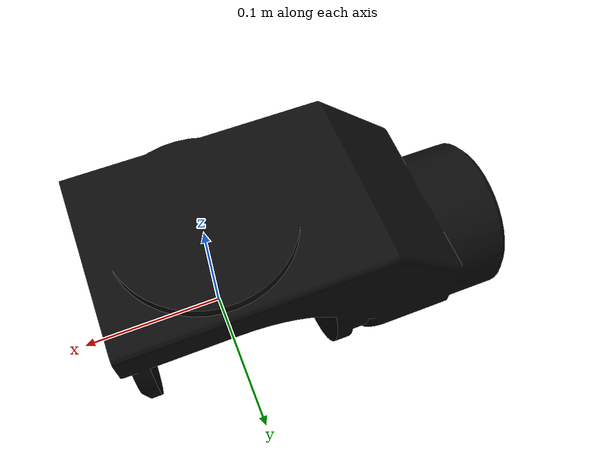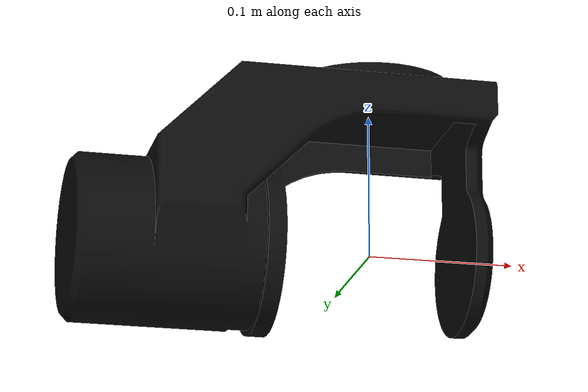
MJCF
<mujoco model="LINK_5">
  <default>
    <default class="visual">
      <geom group="2" type="mesh" contype="0" conaffinity="0"/>
    </default>
    <default class="collision">
      <geom group="3" type="mesh"/>
    </default>
  </default>
  <asset>
    <material name="10,10,10" specular="0.039216" shininess="1.0" rgba="0.039216 0.039216 0.039216 1.000000"/>
    <mesh file="LINK_5.obj"/>
    <mesh file="LINK_5_collision_0.obj"/>
    <mesh file="LINK_5_collision_1.obj"/>
    <mesh file="LINK_5_collision_2.obj"/>
    <mesh file="LINK_5_collision_3.obj"/>
    <mesh file="LINK_5_collision_4.obj"/>
    <mesh file="LINK_5_collision_5.obj"/>
    <mesh file="LINK_5_collision_6.obj"/>
    <mesh file="LINK_5_collision_7.obj"/>
    <mesh file="LINK_5_collision_8.obj"/>
    <mesh file="LINK_5_collision_9.obj"/>
    <mesh file="LINK_5_collision_10.obj"/>
    <mesh file="LINK_5_collision_11.obj"/>
    <mesh file="LINK_5_collision_12.obj"/>
    <mesh file="LINK_5_collision_13.obj"/>
    <mesh file="LINK_5_collision_14.obj"/>
    <mesh file="LINK_5_collision_15.obj"/>
    <mesh file="LINK_5_collision_16.obj"/>
    <mesh file="LINK_5_collision_17.obj"/>
    <mesh file="LINK_5_collision_18.obj"/>
    <mesh file="LINK_5_collision_19.obj"/>
    <mesh file="LINK_5_collision_20.obj"/>
    <mesh file="LINK_5_collision_21.obj"/>
    <mesh file="LINK_5_collision_22.obj"/>
    <mesh file="LINK_5_collision_23.obj"/>
  </asset>
  <worldbody>
    <body name="LINK_5">
      <geom material="10,10,10" mesh="LINK_5" class="visual"/>
      <geom mesh="LINK_5_collision_0" rgba="0.12247730860429418 0.06880484814621979 0.5377656082429827 1" class="collision"/>
      <geom mesh="LINK_5_collision_1" rgba="0.33148849859264073 0.6251651263024339 0.4339211906043404 1" class="collision"/>
      <geom mesh="LINK_5_collision_2" rgba="0.12551027775528045 0.9203082335771967 0.5003641579832226 1" class="collision"/>
      <geom mesh="LINK_5_collision_3" rgba="0.9236719764065846 0.8923648840408381 0.5012105240473833 1" class="collision"/>
      <geom mesh="LINK_5_collision_4" rgba="0.7185805021910587 0.6163526268160466 0.2726040996933101 1" class="collision"/>
      <geom mesh="LINK_5_collision_5" rgba="0.33560666661592686 0.8003924819444763 0.8239291052746556 1" class="collision"/>
      <geom mesh="LINK_5_collision_6" rgba="0.4576706949342202 0.727173277405441 0.7611370155947887 1" class="collision"/>
      <geom mesh="LINK_5_collision_7" rgba="0.9792965391802108 0.7048402601391198 0.33756562658409306 1" class="collision"/>
      <geom mesh="LINK_5_collision_8" rgba="0.3989610695155723 0.5854161317735432 0.9361419219813595 1" class="collision"/>
      <geom mesh="LINK_5_collision_9" rgba="0.9534236519076329 0.30100766265612133 0.6980177281592306 1" class="collision"/>
      <geom mesh="LINK_5_collision_10" rgba="0.3727506463059531 0.3751332928135902 0.31483743517150364 1" class="collision"/>
      <geom mesh="LINK_5_collision_11" rgba="0.7675491824291981 0.2711626558440303 0.5248366925976301 1" class="collision"/>
      <geom mesh="LINK_5_collision_12" rgba="0.1775624675715769 0.5728330454431706 0.5992047954454301 1" class="collision"/>
      <geom mesh="LINK_5_collision_13" rgba="0.010528020802697435 0.71866567712634 0.4993061113810454 1" class="collision"/>
      <geom mesh="LINK_5_collision_14" rgba="0.8905972224204296 0.4804237047112664 0.33703634672738836 1" class="collision"/>
      <geom mesh="LINK_5_collision_15" rgba="0.24604401347648708 0.6811119290951191 0.9158100093779314 1" class="collision"/>
      <geom mesh="LINK_5_collision_16" rgba="0.8638935287378647 0.3844494517571069 0.18799277162665562 1" class="collision"/>
      <geom mesh="LINK_5_collision_17" rgba="0.15894076937471757 0.2979366120949839 0.09662698271839754 1" class="collision"/>
      <geom mesh="LINK_5_collision_18" rgba="0.31052109506127334 0.8682404338559699 0.8897689857754832 1" class="collision"/>
      <geom mesh="LINK_5_collision_19" rgba="0.5555966799311239 0.4284523767681241 0.2782356402367031 1" class="collision"/>
      <geom mesh="LINK_5_collision_20" rgba="0.7720731587835912 0.6372725362590798 0.6187970202336551 1" class="collision"/>
      <geom mesh="LINK_5_collision_21" rgba="0.4213808464146873 0.6676414628159499 0.7761926773945467 1" class="collision"/>
      <geom mesh="LINK_5_collision_22" rgba="0.9448415062548549 0.6403453456219188 0.922157552361394 1" class="collision"/>
      <geom mesh="LINK_5_collision_23" rgba="0.2610534361986432 0.10551649907061134 0.37719096838785304 1" class="collision"/>
    </body>
  </worldbody>
</mujoco>
